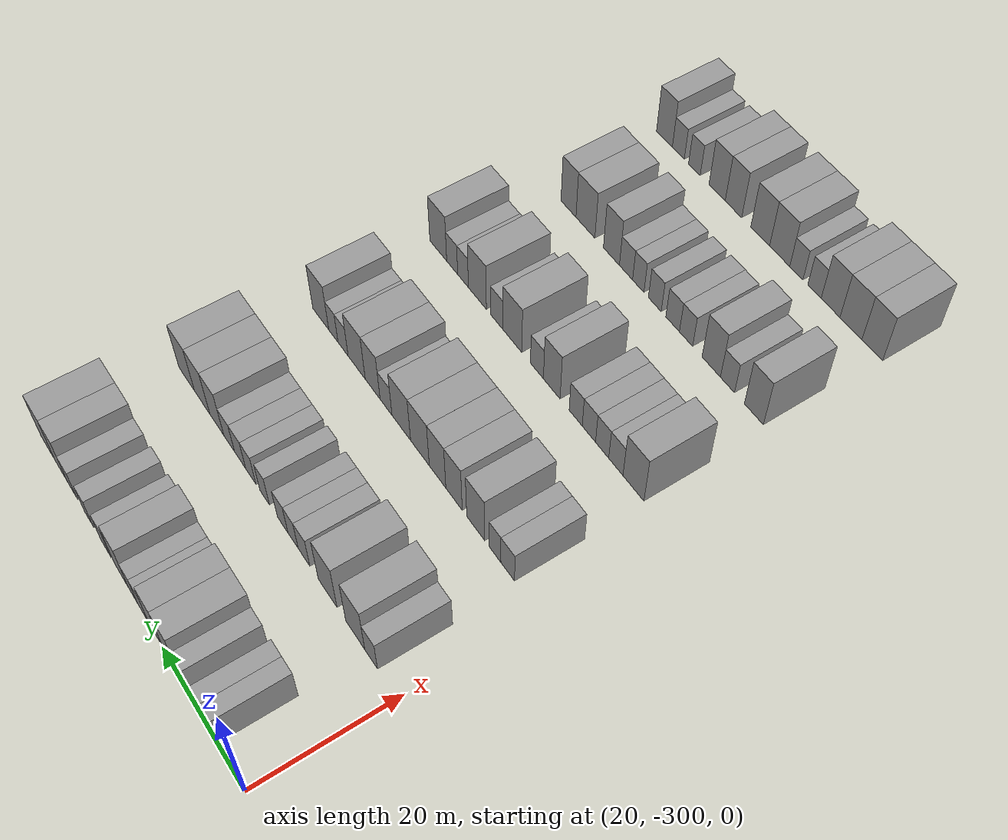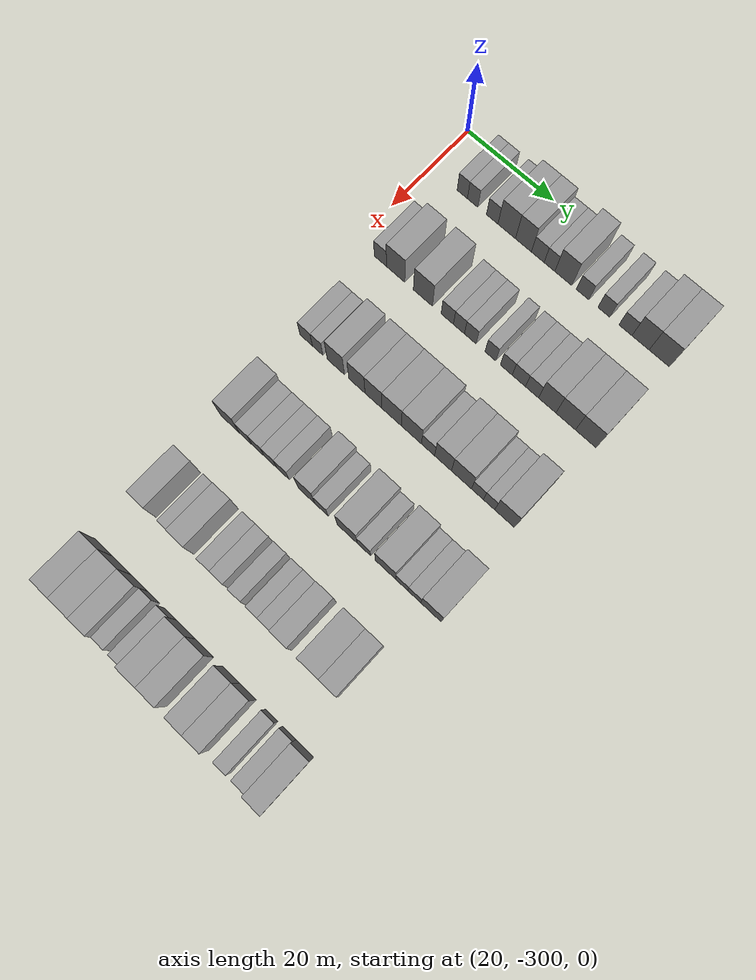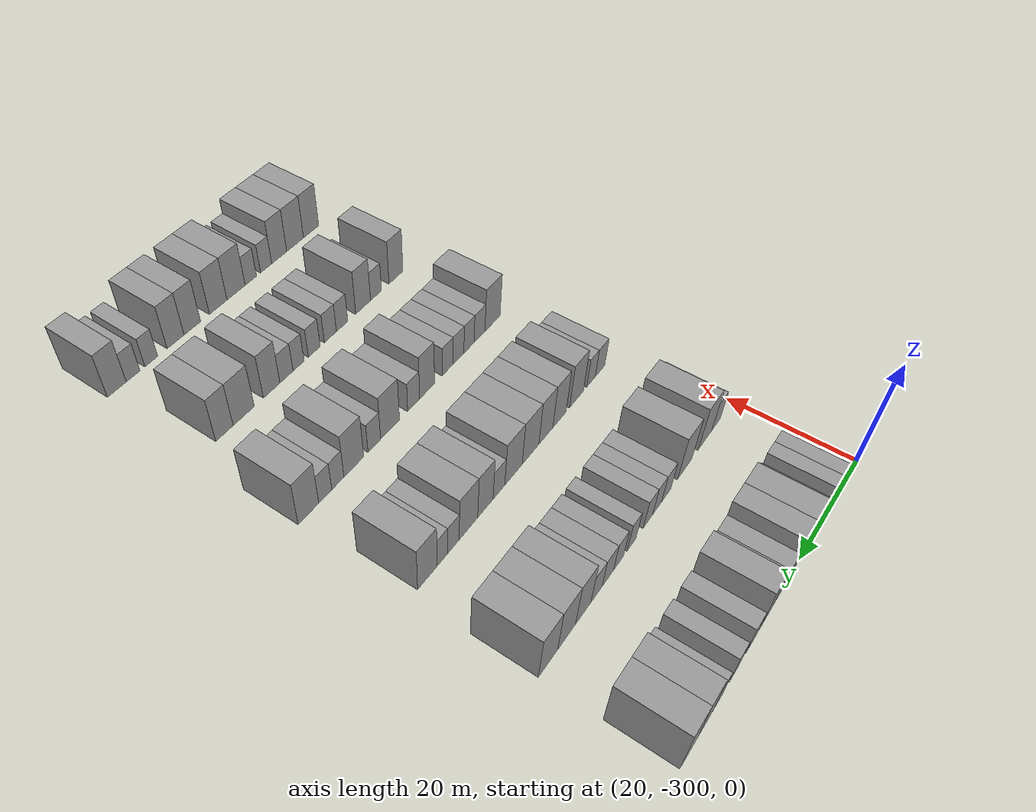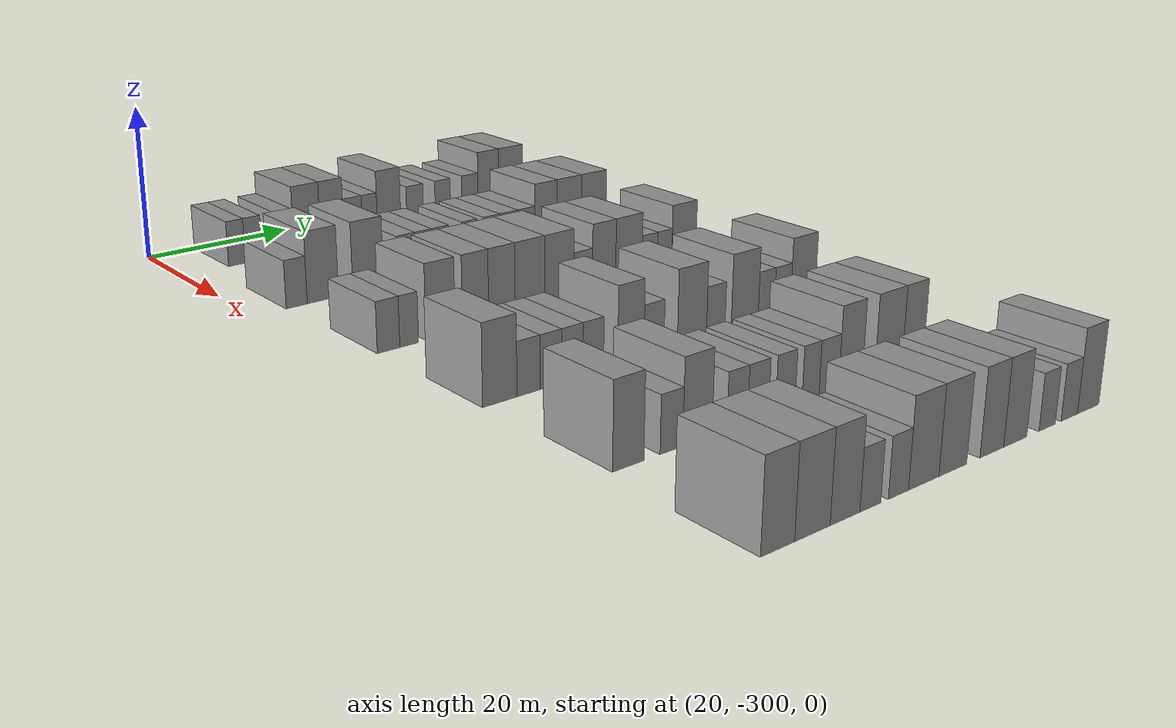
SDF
<sdf version="1.6">
 <world name="default">
  <model name="building_11">
   <static>1</static>
   <pose>25.0000 -292.4646 0 0.000000 0.000000 0.000000</pose>
   <link name="link">
    <pose>0 0 3.00 0 0 0</pose>
    <collision name="collision"><geometry><box><size>10.0000 2.4092 6.0000</size></box></geometry></collision>
    <visual name="visual">
     <cast_shadows>0</cast_shadows>
     <geometry><box><size>10.0000 2.4092 6.0000</size></box></geometry>
     <material>
      <script>
       <uri>model://grey_wall/materials/scripts</uri>
       <uri>model://grey_wall/materials/textures</uri>
       <name>vrc/grey_wall</name>
      </script>
     </material>
    </visual>
   </link>
  </model>
  <model name="building_12">
   <static>1</static>
   <pose>25.0000 -290.0390 0 0.000000 0.000000 0.000000</pose>
   <link name="link">
    <pose>0 0 3.00 0 0 0</pose>
    <collision name="collision"><geometry><box><size>10.0000 2.4420 6.0000</size></box></geometry></collision>
    <visual name="visual">
     <cast_shadows>0</cast_shadows>
     <geometry><box><size>10.0000 2.4420 6.0000</size></box></geometry>
     <material>
      <script>
       <uri>model://grey_wall/materials/scripts</uri>
       <uri>model://grey_wall/materials/textures</uri>
       <name>vrc/grey_wall</name>
      </script>
     </material>
    </visual>
   </link>
  </model>
  <model name="building_13">
   <static>1</static>
   <pose>25.0000 -285.4829 0 0.000000 0.000000 0.000000</pose>
   <link name="link">
    <pose>0 0 3.00 0 0 0</pose>
    <collision name="collision"><geometry><box><size>10.0000 2.6702 6.0000</size></box></geometry></collision>
    <visual name="visual">
     <cast_shadows>0</cast_shadows>
     <geometry><box><size>10.0000 2.6702 6.0000</size></box></geometry>
     <material>
      <script>
       <uri>model://grey_wall/materials/scripts</uri>
       <uri>model://grey_wall/materials/textures</uri>
       <name>vrc/grey_wall</name>
      </script>
     </material>
    </visual>
   </link>
  </model>
  <model name="building_14">
   <static>1</static>
   <pose>25.0000 -282.1232 0 0.000000 0.000000 0.000000</pose>
   <link name="link">
    <pose>0 0 4.50 0 0 0</pose>
    <collision name="collision"><geometry><box><size>10.0000 4.0493 9.0000</size></box></geometry></collision>
    <visual name="visual">
     <cast_shadows>0</cast_shadows>
     <geometry><box><size>10.0000 4.0493 9.0000</size></box></geometry>
     <material>
      <script>
       <uri>model://grey_wall/materials/scripts</uri>
       <uri>model://grey_wall/materials/textures</uri>
       <name>vrc/grey_wall</name>
      </script>
     </material>
    </visual>
   </link>
  </model>
  <model name="building_15">
   <static>1</static>
   <pose>25.0000 -278.2878 0 0.000000 0.000000 0.000000</pose>
   <link name="link">
    <pose>0 0 4.50 0 0 0</pose>
    <collision name="collision"><geometry><box><size>10.0000 3.6216 9.0000</size></box></geometry></collision>
    <visual name="visual">
     <cast_shadows>0</cast_shadows>
     <geometry><box><size>10.0000 3.6216 9.0000</size></box></geometry>
     <material>
      <script>
       <uri>model://grey_wall/materials/scripts</uri>
       <uri>model://grey_wall/materials/textures</uri>
       <name>vrc/grey_wall</name>
      </script>
     </material>
    </visual>
   </link>
  </model>
  <model name="building_16">
   <static>1</static>
   <pose>25.0000 -275.0232 0 0.000000 0.000000 0.000000</pose>
   <link name="link">
    <pose>0 0 3.00 0 0 0</pose>
    <collision name="collision"><geometry><box><size>10.0000 2.9075 6.0000</size></box></geometry></collision>
    <visual name="visual">
     <cast_shadows>0</cast_shadows>
     <geometry><box><size>10.0000 2.9075 6.0000</size></box></geometry>
     <material>
      <script>
       <uri>model://grey_wall/materials/scripts</uri>
       <uri>model://grey_wall/materials/textures</uri>
       <name>vrc/grey_wall</name>
      </script>
     </material>
    </visual>
   </link>
  </model>
  <model name="building_17">
   <static>1</static>
   <pose>25.0000 -272.3607 0 0.000000 0.000000 0.000000</pose>
   <link name="link">
    <pose>0 0 3.00 0 0 0</pose>
    <collision name="collision"><geometry><box><size>10.0000 2.4175 6.0000</size></box></geometry></collision>
    <visual name="visual">
     <cast_shadows>0</cast_shadows>
     <geometry><box><size>10.0000 2.4175 6.0000</size></box></geometry>
     <material>
      <script>
       <uri>model://grey_wall/materials/scripts</uri>
       <uri>model://grey_wall/materials/textures</uri>
       <name>vrc/grey_wall</name>
      </script>
     </material>
    </visual>
   </link>
  </model>
  <model name="building_18">
   <static>1</static>
   <pose>25.0000 -269.2411 0 0.000000 0.000000 0.000000</pose>
   <link name="link">
    <pose>0 0 4.50 0 0 0</pose>
    <collision name="collision"><geometry><box><size>10.0000 3.8217 9.0000</size></box></geometry></collision>
    <visual name="visual">
     <cast_shadows>0</cast_shadows>
     <geometry><box><size>10.0000 3.8217 9.0000</size></box></geometry>
     <material>
      <script>
       <uri>model://grey_wall/materials/scripts</uri>
       <uri>model://grey_wall/materials/textures</uri>
       <name>vrc/grey_wall</name>
      </script>
     </material>
    </visual>
   </link>
  </model>
  <model name="building_19">
   <static>1</static>
   <pose>25.0000 -264.9265 0 0.000000 0.000000 0.000000</pose>
   <link name="link">
    <pose>0 0 3.00 0 0 0</pose>
    <collision name="collision"><geometry><box><size>10.0000 2.8074 6.0000</size></box></geometry></collision>
    <visual name="visual">
     <cast_shadows>0</cast_shadows>
     <geometry><box><size>10.0000 2.8074 6.0000</size></box></geometry>
     <material>
      <script>
       <uri>model://grey_wall/materials/scripts</uri>
       <uri>model://grey_wall/materials/textures</uri>
       <name>vrc/grey_wall</name>
      </script>
     </material>
    </visual>
   </link>
  </model>
  <model name="building_20">
   <static>1</static>
   <pose>25.0000 -260.2096 0 0.000000 0.000000 0.000000</pose>
   <link name="link">
    <pose>0 0 3.00 0 0 0</pose>
    <collision name="collision"><geometry><box><size>10.0000 2.6264 6.0000</size></box></geometry></collision>
    <visual name="visual">
     <cast_shadows>0</cast_shadows>
     <geometry><box><size>10.0000 2.6264 6.0000</size></box></geometry>
     <material>
      <script>
       <uri>model://grey_wall/materials/scripts</uri>
       <uri>model://grey_wall/materials/textures</uri>
       <name>vrc/grey_wall</name>
      </script>
     </material>
    </visual>
   </link>
  </model>
  <model name="building_21">
   <static>1</static>
   <pose>25.0000 -255.4781 0 0.000000 0.000000 0.000000</pose>
   <link name="link">
    <pose>0 0 3.00 0 0 0</pose>
    <collision name="collision"><geometry><box><size>10.0000 2.8368 6.0000</size></box></geometry></collision>
    <visual name="visual">
     <cast_shadows>0</cast_shadows>
     <geometry><box><size>10.0000 2.8368 6.0000</size></box></geometry>
     <material>
      <script>
       <uri>model://grey_wall/materials/scripts</uri>
       <uri>model://grey_wall/materials/textures</uri>
       <name>vrc/grey_wall</name>
      </script>
     </material>
    </visual>
   </link>
  </model>
  <model name="building_22">
   <static>1</static>
   <pose>25.0000 -252.1929 0 0.000000 0.000000 0.000000</pose>
   <link name="link">
    <pose>0 0 4.50 0 0 0</pose>
    <collision name="collision"><geometry><box><size>10.0000 3.7335 9.0000</size></box></geometry></collision>
    <visual name="visual">
     <cast_shadows>0</cast_shadows>
     <geometry><box><size>10.0000 3.7335 9.0000</size></box></geometry>
     <material>
      <script>
       <uri>model://grey_wall/materials/scripts</uri>
       <uri>model://grey_wall/materials/textures</uri>
       <name>vrc/grey_wall</name>
      </script>
     </material>
    </visual>
   </link>
  </model>
  <model name="building_23">
   <static>1</static>
   <pose>25.0000 -248.1454 0 0.000000 0.000000 0.000000</pose>
   <link name="link">
    <pose>0 0 4.50 0 0 0</pose>
    <collision name="collision"><geometry><box><size>10.0000 4.3615 9.0000</size></box></geometry></collision>
    <visual name="visual">
     <cast_shadows>0</cast_shadows>
     <geometry><box><size>10.0000 4.3615 9.0000</size></box></geometry>
     <material>
      <script>
       <uri>model://grey_wall/materials/scripts</uri>
       <uri>model://grey_wall/materials/textures</uri>
       <name>vrc/grey_wall</name>
      </script>
     </material>
    </visual>
   </link>
  </model>
  <model name="building_182">
   <static>1</static>
   <pose>44.0000 -294.3470 0 0.000000 0.000000 0.000000</pose>
   <link name="link">
    <pose>0 0 3.00 0 0 0</pose>
    <collision name="collision"><geometry><box><size>10.0000 2.8374 6.0000</size></box></geometry></collision>
    <visual name="visual">
     <cast_shadows>0</cast_shadows>
     <geometry><box><size>10.0000 2.8374 6.0000</size></box></geometry>
     <material>
      <script>
       <uri>model://grey_wall/materials/scripts</uri>
       <uri>model://grey_wall/materials/textures</uri>
       <name>vrc/grey_wall</name>
      </script>
     </material>
    </visual>
   </link>
  </model>
  <model name="building_183">
   <static>1</static>
   <pose>44.0000 -290.7730 0 0.000000 0.000000 0.000000</pose>
   <link name="link">
    <pose>0 0 4.50 0 0 0</pose>
    <collision name="collision"><geometry><box><size>10.0000 4.3106 9.0000</size></box></geometry></collision>
    <visual name="visual">
     <cast_shadows>0</cast_shadows>
     <geometry><box><size>10.0000 4.3106 9.0000</size></box></geometry>
     <material>
      <script>
       <uri>model://grey_wall/materials/scripts</uri>
       <uri>model://grey_wall/materials/textures</uri>
       <name>vrc/grey_wall</name>
      </script>
     </material>
    </visual>
   </link>
  </model>
  <model name="building_184">
   <static>1</static>
   <pose>44.0000 -284.4178 0 0.000000 0.000000 0.000000</pose>
   <link name="link">
    <pose>0 0 4.50 0 0 0</pose>
    <collision name="collision"><geometry><box><size>10.0000 4.3997 9.0000</size></box></geometry></collision>
    <visual name="visual">
     <cast_shadows>0</cast_shadows>
     <geometry><box><size>10.0000 4.3997 9.0000</size></box></geometry>
     <material>
      <script>
       <uri>model://grey_wall/materials/scripts</uri>
       <uri>model://grey_wall/materials/textures</uri>
       <name>vrc/grey_wall</name>
      </script>
     </material>
    </visual>
   </link>
  </model>
  <model name="building_185">
   <static>1</static>
   <pose>44.0000 -278.8177 0 0.000000 0.000000 0.000000</pose>
   <link name="link">
    <pose>0 0 3.00 0 0 0</pose>
    <collision name="collision"><geometry><box><size>10.0000 2.8006 6.0000</size></box></geometry></collision>
    <visual name="visual">
     <cast_shadows>0</cast_shadows>
     <geometry><box><size>10.0000 2.8006 6.0000</size></box></geometry>
     <material>
      <script>
       <uri>model://grey_wall/materials/scripts</uri>
       <uri>model://grey_wall/materials/textures</uri>
       <name>vrc/grey_wall</name>
      </script>
     </material>
    </visual>
   </link>
  </model>
  <model name="building_186">
   <static>1</static>
   <pose>44.0000 -276.1673 0 0.000000 0.000000 0.000000</pose>
   <link name="link">
    <pose>0 0 3.00 0 0 0</pose>
    <collision name="collision"><geometry><box><size>10.0000 2.5003 6.0000</size></box></geometry></collision>
    <visual name="visual">
     <cast_shadows>0</cast_shadows>
     <geometry><box><size>10.0000 2.5003 6.0000</size></box></geometry>
     <material>
      <script>
       <uri>model://grey_wall/materials/scripts</uri>
       <uri>model://grey_wall/materials/textures</uri>
       <name>vrc/grey_wall</name>
      </script>
     </material>
    </visual>
   </link>
  </model>
  <model name="building_187">
   <static>1</static>
   <pose>44.0000 -273.6014 0 0.000000 0.000000 0.000000</pose>
   <link name="link">
    <pose>0 0 3.00 0 0 0</pose>
    <collision name="collision"><geometry><box><size>10.0000 2.6316 6.0000</size></box></geometry></collision>
    <visual name="visual">
     <cast_shadows>0</cast_shadows>
     <geometry><box><size>10.0000 2.6316 6.0000</size></box></geometry>
     <material>
      <script>
       <uri>model://grey_wall/materials/scripts</uri>
       <uri>model://grey_wall/materials/textures</uri>
       <name>vrc/grey_wall</name>
      </script>
     </material>
    </visual>
   </link>
  </model>
  <model name="building_188">
   <static>1</static>
   <pose>44.0000 -269.0796 0 0.000000 0.000000 0.000000</pose>
   <link name="link">
    <pose>0 0 3.00 0 0 0</pose>
    <collision name="collision"><geometry><box><size>10.0000 2.4119 6.0000</size></box></geometry></collision>
    <visual name="visual">
     <cast_shadows>0</cast_shadows>
     <geometry><box><size>10.0000 2.4119 6.0000</size></box></geometry>
     <material>
      <script>
       <uri>model://grey_wall/materials/scripts</uri>
       <uri>model://grey_wall/materials/textures</uri>
       <name>vrc/grey_wall</name>
      </script>
     </material>
    </visual>
   </link>
  </model>
  <model name="building_189">
   <static>1</static>
   <pose>44.0000 -265.5521 0 0.000000 0.000000 0.000000</pose>
   <link name="link">
    <pose>0 0 3.00 0 0 0</pose>
    <collision name="collision"><geometry><box><size>10.0000 2.6431 6.0000</size></box></geometry></collision>
    <visual name="visual">
     <cast_shadows>0</cast_shadows>
     <geometry><box><size>10.0000 2.6431 6.0000</size></box></geometry>
     <material>
      <script>
       <uri>model://grey_wall/materials/scripts</uri>
       <uri>model://grey_wall/materials/textures</uri>
       <name>vrc/grey_wall</name>
      </script>
     </material>
    </visual>
   </link>
  </model>
  <model name="building_190">
   <static>1</static>
   <pose>44.0000 -262.7664 0 0.000000 0.000000 0.000000</pose>
   <link name="link">
    <pose>0 0 3.00 0 0 0</pose>
    <collision name="collision"><geometry><box><size>10.0000 2.9283 6.0000</size></box></geometry></collision>
    <visual name="visual">
     <cast_shadows>0</cast_shadows>
     <geometry><box><size>10.0000 2.9283 6.0000</size></box></geometry>
     <material>
      <script>
       <uri>model://grey_wall/materials/scripts</uri>
       <uri>model://grey_wall/materials/textures</uri>
       <name>vrc/grey_wall</name>
      </script>
     </material>
    </visual>
   </link>
  </model>
  <model name="building_191">
   <static>1</static>
   <pose>44.0000 -259.8717 0 0.000000 0.000000 0.000000</pose>
   <link name="link">
    <pose>0 0 3.00 0 0 0</pose>
    <collision name="collision"><geometry><box><size>10.0000 2.8611 6.0000</size></box></geometry></collision>
    <visual name="visual">
     <cast_shadows>0</cast_shadows>
     <geometry><box><size>10.0000 2.8611 6.0000</size></box></geometry>
     <material>
      <script>
       <uri>model://grey_wall/materials/scripts</uri>
       <uri>model://grey_wall/materials/textures</uri>
       <name>vrc/grey_wall</name>
      </script>
     </material>
    </visual>
   </link>
  </model>
  <model name="building_192">
   <static>1</static>
   <pose>44.0000 -256.5457 0 0.000000 0.000000 0.000000</pose>
   <link name="link">
    <pose>0 0 4.50 0 0 0</pose>
    <collision name="collision"><geometry><box><size>10.0000 3.7911 9.0000</size></box></geometry></collision>
    <visual name="visual">
     <cast_shadows>0</cast_shadows>
     <geometry><box><size>10.0000 3.7911 9.0000</size></box></geometry>
     <material>
      <script>
       <uri>model://grey_wall/materials/scripts</uri>
       <uri>model://grey_wall/materials/textures</uri>
       <name>vrc/grey_wall</name>
      </script>
     </material>
    </visual>
   </link>
  </model>
  <model name="building_193">
   <static>1</static>
   <pose>44.0000 -252.5332 0 0.000000 0.000000 0.000000</pose>
   <link name="link">
    <pose>0 0 4.50 0 0 0</pose>
    <collision name="collision"><geometry><box><size>10.0000 4.2337 9.0000</size></box></geometry></collision>
    <visual name="visual">
     <cast_shadows>0</cast_shadows>
     <geometry><box><size>10.0000 4.2337 9.0000</size></box></geometry>
     <material>
      <script>
       <uri>model://grey_wall/materials/scripts</uri>
       <uri>model://grey_wall/materials/textures</uri>
       <name>vrc/grey_wall</name>
      </script>
     </material>
    </visual>
   </link>
  </model>
  <model name="building_194">
   <static>1</static>
   <pose>44.0000 -248.2084 0 0.000000 0.000000 0.000000</pose>
   <link name="link">
    <pose>0 0 4.50 0 0 0</pose>
    <collision name="collision"><geometry><box><size>10.0000 4.4159 9.0000</size></box></geometry></collision>
    <visual name="visual">
     <cast_shadows>0</cast_shadows>
     <geometry><box><size>10.0000 4.4159 9.0000</size></box></geometry>
     <material>
      <script>
       <uri>model://grey_wall/materials/scripts</uri>
       <uri>model://grey_wall/materials/textures</uri>
       <name>vrc/grey_wall</name>
      </script>
     </material>
    </visual>
   </link>
  </model>
  <model name="building_362">
   <static>1</static>
   <pose>63.0000 -293.6010 0 0.000000 0.000000 0.000000</pose>
   <link name="link">
    <pose>0 0 3.00 0 0 0</pose>
    <collision name="collision"><geometry><box><size>10.0000 2.9008 6.0000</size></box></geometry></collision>
    <visual name="visual">
     <cast_shadows>0</cast_shadows>
     <geometry><box><size>10.0000 2.9008 6.0000</size></box></geometry>
     <material>
      <script>
       <uri>model://grey_wall/materials/scripts</uri>
       <uri>model://grey_wall/materials/textures</uri>
       <name>vrc/grey_wall</name>
      </script>
     </material>
    </visual>
   </link>
  </model>
  <model name="building_363">
   <static>1</static>
   <pose>63.0000 -290.9128 0 0.000000 0.000000 0.000000</pose>
   <link name="link">
    <pose>0 0 3.00 0 0 0</pose>
    <collision name="collision"><geometry><box><size>10.0000 2.4757 6.0000</size></box></geometry></collision>
    <visual name="visual">
     <cast_shadows>0</cast_shadows>
     <geometry><box><size>10.0000 2.4757 6.0000</size></box></geometry>
     <material>
      <script>
       <uri>model://grey_wall/materials/scripts</uri>
       <uri>model://grey_wall/materials/textures</uri>
       <name>vrc/grey_wall</name>
      </script>
     </material>
    </visual>
   </link>
  </model>
  <model name="building_364">
   <static>1</static>
   <pose>63.0000 -286.6892 0 0.000000 0.000000 0.000000</pose>
   <link name="link">
    <pose>0 0 4.50 0 0 0</pose>
    <collision name="collision"><geometry><box><size>10.0000 3.9715 9.0000</size></box></geometry></collision>
    <visual name="visual">
     <cast_shadows>0</cast_shadows>
     <geometry><box><size>10.0000 3.9715 9.0000</size></box></geometry>
     <material>
      <script>
       <uri>model://grey_wall/materials/scripts</uri>
       <uri>model://grey_wall/materials/textures</uri>
       <name>vrc/grey_wall</name>
      </script>
     </material>
    </visual>
   </link>
  </model>
  <model name="building_365">
   <static>1</static>
   <pose>63.0000 -281.8565 0 0.000000 0.000000 0.000000</pose>
   <link name="link">
    <pose>0 0 4.50 0 0 0</pose>
    <collision name="collision"><geometry><box><size>10.0000 3.6940 9.0000</size></box></geometry></collision>
    <visual name="visual">
     <cast_shadows>0</cast_shadows>
     <geometry><box><size>10.0000 3.6940 9.0000</size></box></geometry>
     <material>
      <script>
       <uri>model://grey_wall/materials/scripts</uri>
       <uri>model://grey_wall/materials/textures</uri>
       <name>vrc/grey_wall</name>
      </script>
     </material>
    </visual>
   </link>
  </model>
  <model name="building_366">
   <static>1</static>
   <pose>63.0000 -278.1014 0 0.000000 0.000000 0.000000</pose>
   <link name="link">
    <pose>0 0 4.50 0 0 0</pose>
    <collision name="collision"><geometry><box><size>10.0000 3.8161 9.0000</size></box></geometry></collision>
    <visual name="visual">
     <cast_shadows>0</cast_shadows>
     <geometry><box><size>10.0000 3.8161 9.0000</size></box></geometry>
     <material>
      <script>
       <uri>model://grey_wall/materials/scripts</uri>
       <uri>model://grey_wall/materials/textures</uri>
       <name>vrc/grey_wall</name>
      </script>
     </material>
    </visual>
   </link>
  </model>
  <model name="building_367">
   <static>1</static>
   <pose>63.0000 -273.9947 0 0.000000 0.000000 0.000000</pose>
   <link name="link">
    <pose>0 0 4.50 0 0 0</pose>
    <collision name="collision"><geometry><box><size>10.0000 4.3972 9.0000</size></box></geometry></collision>
    <visual name="visual">
     <cast_shadows>0</cast_shadows>
     <geometry><box><size>10.0000 4.3972 9.0000</size></box></geometry>
     <material>
      <script>
       <uri>model://grey_wall/materials/scripts</uri>
       <uri>model://grey_wall/materials/textures</uri>
       <name>vrc/grey_wall</name>
      </script>
     </material>
    </visual>
   </link>
  </model>
  <model name="building_368">
   <static>1</static>
   <pose>63.0000 -269.5645 0 0.000000 0.000000 0.000000</pose>
   <link name="link">
    <pose>0 0 4.50 0 0 0</pose>
    <collision name="collision"><geometry><box><size>10.0000 4.4633 9.0000</size></box></geometry></collision>
    <visual name="visual">
     <cast_shadows>0</cast_shadows>
     <geometry><box><size>10.0000 4.4633 9.0000</size></box></geometry>
     <material>
      <script>
       <uri>model://grey_wall/materials/scripts</uri>
       <uri>model://grey_wall/materials/textures</uri>
       <name>vrc/grey_wall</name>
      </script>
     </material>
    </visual>
   </link>
  </model>
  <model name="building_369">
   <static>1</static>
   <pose>63.0000 -265.8776 0 0.000000 0.000000 0.000000</pose>
   <link name="link">
    <pose>0 0 3.00 0 0 0</pose>
    <collision name="collision"><geometry><box><size>10.0000 2.9104 6.0000</size></box></geometry></collision>
    <visual name="visual">
     <cast_shadows>0</cast_shadows>
     <geometry><box><size>10.0000 2.9104 6.0000</size></box></geometry>
     <material>
      <script>
       <uri>model://grey_wall/materials/scripts</uri>
       <uri>model://grey_wall/materials/textures</uri>
       <name>vrc/grey_wall</name>
      </script>
     </material>
    </visual>
   </link>
  </model>
  <model name="building_370">
   <static>1</static>
   <pose>63.0000 -262.5702 0 0.000000 0.000000 0.000000</pose>
   <link name="link">
    <pose>0 0 4.50 0 0 0</pose>
    <collision name="collision"><geometry><box><size>10.0000 3.7043 9.0000</size></box></geometry></collision>
    <visual name="visual">
     <cast_shadows>0</cast_shadows>
     <geometry><box><size>10.0000 3.7043 9.0000</size></box></geometry>
     <material>
      <script>
       <uri>model://grey_wall/materials/scripts</uri>
       <uri>model://grey_wall/materials/textures</uri>
       <name>vrc/grey_wall</name>
      </script>
     </material>
    </visual>
   </link>
  </model>
  <model name="building_371">
   <static>1</static>
   <pose>63.0000 -258.5419 0 0.000000 0.000000 0.000000</pose>
   <link name="link">
    <pose>0 0 4.50 0 0 0</pose>
    <collision name="collision"><geometry><box><size>10.0000 4.3522 9.0000</size></box></geometry></collision>
    <visual name="visual">
     <cast_shadows>0</cast_shadows>
     <geometry><box><size>10.0000 4.3522 9.0000</size></box></geometry>
     <material>
      <script>
       <uri>model://grey_wall/materials/scripts</uri>
       <uri>model://grey_wall/materials/textures</uri>
       <name>vrc/grey_wall</name>
      </script>
     </material>
    </visual>
   </link>
  </model>
  <model name="building_372">
   <static>1</static>
   <pose>63.0000 -255.0656 0 0.000000 0.000000 0.000000</pose>
   <link name="link">
    <pose>0 0 3.00 0 0 0</pose>
    <collision name="collision"><geometry><box><size>10.0000 2.6005 6.0000</size></box></geometry></collision>
    <visual name="visual">
     <cast_shadows>0</cast_shadows>
     <geometry><box><size>10.0000 2.6005 6.0000</size></box></geometry>
     <material>
      <script>
       <uri>model://grey_wall/materials/scripts</uri>
       <uri>model://grey_wall/materials/textures</uri>
       <name>vrc/grey_wall</name>
      </script>
     </material>
    </visual>
   </link>
  </model>
  <model name="building_373">
   <static>1</static>
   <pose>63.0000 -252.5535 0 0.000000 0.000000 0.000000</pose>
   <link name="link">
    <pose>0 0 3.00 0 0 0</pose>
    <collision name="collision"><geometry><box><size>10.0000 2.4236 6.0000</size></box></geometry></collision>
    <visual name="visual">
     <cast_shadows>0</cast_shadows>
     <geometry><box><size>10.0000 2.4236 6.0000</size></box></geometry>
     <material>
      <script>
       <uri>model://grey_wall/materials/scripts</uri>
       <uri>model://grey_wall/materials/textures</uri>
       <name>vrc/grey_wall</name>
      </script>
     </material>
    </visual>
   </link>
  </model>
  <model name="building_374">
   <static>1</static>
   <pose>63.0000 -249.2365 0 0.000000 0.000000 0.000000</pose>
   <link name="link">
    <pose>0 0 4.50 0 0 0</pose>
    <collision name="collision"><geometry><box><size>10.0000 4.2103 9.0000</size></box></geometry></collision>
    <visual name="visual">
     <cast_shadows>0</cast_shadows>
     <geometry><box><size>10.0000 4.2103 9.0000</size></box></geometry>
     <material>
      <script>
       <uri>model://grey_wall/materials/scripts</uri>
       <uri>model://grey_wall/materials/textures</uri>
       <name>vrc/grey_wall</name>
      </script>
     </material>
    </visual>
   </link>
  </model>
  <model name="building_528">
   <static>1</static>
   <pose>82.0000 -292.5522 0 0.000000 0.000000 0.000000</pose>
   <link name="link">
    <pose>0 0 4.50 0 0 0</pose>
    <collision name="collision"><geometry><box><size>10.0000 4.3041 9.0000</size></box></geometry></collision>
    <visual name="visual">
     <cast_shadows>0</cast_shadows>
     <geometry><box><size>10.0000 4.3041 9.0000</size></box></geometry>
     <material>
      <script>
       <uri>model://grey_wall/materials/scripts</uri>
       <uri>model://grey_wall/materials/textures</uri>
       <name>vrc/grey_wall</name>
      </script>
     </material>
    </visual>
   </link>
  </model>
  <model name="building_529">
   <static>1</static>
   <pose>82.0000 -288.9078 0 0.000000 0.000000 0.000000</pose>
   <link name="link">
    <pose>0 0 3.00 0 0 0</pose>
    <collision name="collision"><geometry><box><size>10.0000 2.9847 6.0000</size></box></geometry></collision>
    <visual name="visual">
     <cast_shadows>0</cast_shadows>
     <geometry><box><size>10.0000 2.9847 6.0000</size></box></geometry>
     <material>
      <script>
       <uri>model://grey_wall/materials/scripts</uri>
       <uri>model://grey_wall/materials/textures</uri>
       <name>vrc/grey_wall</name>
      </script>
     </material>
    </visual>
   </link>
  </model>
  <model name="building_530">
   <static>1</static>
   <pose>82.0000 -286.0202 0 0.000000 0.000000 0.000000</pose>
   <link name="link">
    <pose>0 0 3.00 0 0 0</pose>
    <collision name="collision"><geometry><box><size>10.0000 2.7906 6.0000</size></box></geometry></collision>
    <visual name="visual">
     <cast_shadows>0</cast_shadows>
     <geometry><box><size>10.0000 2.7906 6.0000</size></box></geometry>
     <material>
      <script>
       <uri>model://grey_wall/materials/scripts</uri>
       <uri>model://grey_wall/materials/textures</uri>
       <name>vrc/grey_wall</name>
      </script>
     </material>
    </visual>
   </link>
  </model>
  <model name="building_531">
   <static>1</static>
   <pose>82.0000 -283.1897 0 0.000000 0.000000 0.000000</pose>
   <link name="link">
    <pose>0 0 3.00 0 0 0</pose>
    <collision name="collision"><geometry><box><size>10.0000 2.8705 6.0000</size></box></geometry></collision>
    <visual name="visual">
     <cast_shadows>0</cast_shadows>
     <geometry><box><size>10.0000 2.8705 6.0000</size></box></geometry>
     <material>
      <script>
       <uri>model://grey_wall/materials/scripts</uri>
       <uri>model://grey_wall/materials/textures</uri>
       <name>vrc/grey_wall</name>
      </script>
     </material>
    </visual>
   </link>
  </model>
  <model name="building_532">
   <static>1</static>
   <pose>82.0000 -280.3255 0 0.000000 0.000000 0.000000</pose>
   <link name="link">
    <pose>0 0 3.00 0 0 0</pose>
    <collision name="collision"><geometry><box><size>10.0000 2.8579 6.0000</size></box></geometry></collision>
    <visual name="visual">
     <cast_shadows>0</cast_shadows>
     <geometry><box><size>10.0000 2.8579 6.0000</size></box></geometry>
     <material>
      <script>
       <uri>model://grey_wall/materials/scripts</uri>
       <uri>model://grey_wall/materials/textures</uri>
       <name>vrc/grey_wall</name>
      </script>
     </material>
    </visual>
   </link>
  </model>
  <model name="building_533">
   <static>1</static>
   <pose>82.0000 -275.0267 0 0.000000 0.000000 0.000000</pose>
   <link name="link">
    <pose>0 0 4.50 0 0 0</pose>
    <collision name="collision"><geometry><box><size>10.0000 3.7397 9.0000</size></box></geometry></collision>
    <visual name="visual">
     <cast_shadows>0</cast_shadows>
     <geometry><box><size>10.0000 3.7397 9.0000</size></box></geometry>
     <material>
      <script>
       <uri>model://grey_wall/materials/scripts</uri>
       <uri>model://grey_wall/materials/textures</uri>
       <name>vrc/grey_wall</name>
      </script>
     </material>
    </visual>
   </link>
  </model>
  <model name="building_534">
   <static>1</static>
   <pose>82.0000 -271.6827 0 0.000000 0.000000 0.000000</pose>
   <link name="link">
    <pose>0 0 3.00 0 0 0</pose>
    <collision name="collision"><geometry><box><size>10.0000 2.9483 6.0000</size></box></geometry></collision>
    <visual name="visual">
     <cast_shadows>0</cast_shadows>
     <geometry><box><size>10.0000 2.9483 6.0000</size></box></geometry>
     <material>
      <script>
       <uri>model://grey_wall/materials/scripts</uri>
       <uri>model://grey_wall/materials/textures</uri>
       <name>vrc/grey_wall</name>
      </script>
     </material>
    </visual>
   </link>
  </model>
  <model name="building_535">
   <static>1</static>
   <pose>82.0000 -265.9795 0 0.000000 0.000000 0.000000</pose>
   <link name="link">
    <pose>0 0 4.50 0 0 0</pose>
    <collision name="collision"><geometry><box><size>10.0000 4.4581 9.0000</size></box></geometry></collision>
    <visual name="visual">
     <cast_shadows>0</cast_shadows>
     <geometry><box><size>10.0000 4.4581 9.0000</size></box></geometry>
     <material>
      <script>
       <uri>model://grey_wall/materials/scripts</uri>
       <uri>model://grey_wall/materials/textures</uri>
       <name>vrc/grey_wall</name>
      </script>
     </material>
    </visual>
   </link>
  </model>
  <model name="building_536">
   <static>1</static>
   <pose>82.0000 -262.2933 0 0.000000 0.000000 0.000000</pose>
   <link name="link">
    <pose>0 0 3.00 0 0 0</pose>
    <collision name="collision"><geometry><box><size>10.0000 2.9142 6.0000</size></box></geometry></collision>
    <visual name="visual">
     <cast_shadows>0</cast_shadows>
     <geometry><box><size>10.0000 2.9142 6.0000</size></box></geometry>
     <material>
      <script>
       <uri>model://grey_wall/materials/scripts</uri>
       <uri>model://grey_wall/materials/textures</uri>
       <name>vrc/grey_wall</name>
      </script>
     </material>
    </visual>
   </link>
  </model>
  <model name="building_537">
   <static>1</static>
   <pose>82.0000 -257.6393 0 0.000000 0.000000 0.000000</pose>
   <link name="link">
    <pose>0 0 4.50 0 0 0</pose>
    <collision name="collision"><geometry><box><size>10.0000 4.3939 9.0000</size></box></geometry></collision>
    <visual name="visual">
     <cast_shadows>0</cast_shadows>
     <geometry><box><size>10.0000 4.3939 9.0000</size></box></geometry>
     <material>
      <script>
       <uri>model://grey_wall/materials/scripts</uri>
       <uri>model://grey_wall/materials/textures</uri>
       <name>vrc/grey_wall</name>
      </script>
     </material>
    </visual>
   </link>
  </model>
  <model name="building_538">
   <static>1</static>
   <pose>82.0000 -254.1129 0 0.000000 0.000000 0.000000</pose>
   <link name="link">
    <pose>0 0 3.00 0 0 0</pose>
    <collision name="collision"><geometry><box><size>10.0000 2.6590 6.0000</size></box></geometry></collision>
    <visual name="visual">
     <cast_shadows>0</cast_shadows>
     <geometry><box><size>10.0000 2.6590 6.0000</size></box></geometry>
     <material>
      <script>
       <uri>model://grey_wall/materials/scripts</uri>
       <uri>model://grey_wall/materials/textures</uri>
       <name>vrc/grey_wall</name>
      </script>
     </material>
    </visual>
   </link>
  </model>
  <model name="building_539">
   <static>1</static>
   <pose>82.0000 -251.4051 0 0.000000 0.000000 0.000000</pose>
   <link name="link">
    <pose>0 0 3.00 0 0 0</pose>
    <collision name="collision"><geometry><box><size>10.0000 2.7565 6.0000</size></box></geometry></collision>
    <visual name="visual">
     <cast_shadows>0</cast_shadows>
     <geometry><box><size>10.0000 2.7565 6.0000</size></box></geometry>
     <material>
      <script>
       <uri>model://grey_wall/materials/scripts</uri>
       <uri>model://grey_wall/materials/textures</uri>
       <name>vrc/grey_wall</name>
      </script>
     </material>
    </visual>
   </link>
  </model>
  <model name="building_540">
   <static>1</static>
   <pose>82.0000 -247.8852 0 0.000000 0.000000 0.000000</pose>
   <link name="link">
    <pose>0 0 4.50 0 0 0</pose>
    <collision name="collision"><geometry><box><size>10.0000 4.2834 9.0000</size></box></geometry></collision>
    <visual name="visual">
     <cast_shadows>0</cast_shadows>
     <geometry><box><size>10.0000 4.2834 9.0000</size></box></geometry>
     <material>
      <script>
       <uri>model://grey_wall/materials/scripts</uri>
       <uri>model://grey_wall/materials/textures</uri>
       <name>vrc/grey_wall</name>
      </script>
     </material>
    </visual>
   </link>
  </model>
  <model name="building_703">
   <static>1</static>
   <pose>101.0000 -292.1672 0 0.000000 0.000000 0.000000</pose>
   <link name="link">
    <pose>0 0 4.50 0 0 0</pose>
    <collision name="collision"><geometry><box><size>10.0000 3.7935 9.0000</size></box></geometry></collision>
    <visual name="visual">
     <cast_shadows>0</cast_shadows>
     <geometry><box><size>10.0000 3.7935 9.0000</size></box></geometry>
     <material>
      <script>
       <uri>model://grey_wall/materials/scripts</uri>
       <uri>model://grey_wall/materials/textures</uri>
       <name>vrc/grey_wall</name>
      </script>
     </material>
    </visual>
   </link>
  </model>
  <model name="building_704">
   <static>1</static>
   <pose>101.0000 -286.8284 0 0.000000 0.000000 0.000000</pose>
   <link name="link">
    <pose>0 0 3.00 0 0 0</pose>
    <collision name="collision"><geometry><box><size>10.0000 2.8841 6.0000</size></box></geometry></collision>
    <visual name="visual">
     <cast_shadows>0</cast_shadows>
     <geometry><box><size>10.0000 2.8841 6.0000</size></box></geometry>
     <material>
      <script>
       <uri>model://grey_wall/materials/scripts</uri>
       <uri>model://grey_wall/materials/textures</uri>
       <name>vrc/grey_wall</name>
      </script>
     </material>
    </visual>
   </link>
  </model>
  <model name="building_705">
   <static>1</static>
   <pose>101.0000 -283.4772 0 0.000000 0.000000 0.000000</pose>
   <link name="link">
    <pose>0 0 4.50 0 0 0</pose>
    <collision name="collision"><geometry><box><size>10.0000 3.8182 9.0000</size></box></geometry></collision>
    <visual name="visual">
     <cast_shadows>0</cast_shadows>
     <geometry><box><size>10.0000 3.8182 9.0000</size></box></geometry>
     <material>
      <script>
       <uri>model://grey_wall/materials/scripts</uri>
       <uri>model://grey_wall/materials/textures</uri>
       <name>vrc/grey_wall</name>
      </script>
     </material>
    </visual>
   </link>
  </model>
  <model name="building_706">
   <static>1</static>
   <pose>101.0000 -278.1553 0 0.000000 0.000000 0.000000</pose>
   <link name="link">
    <pose>0 0 3.00 0 0 0</pose>
    <collision name="collision"><geometry><box><size>10.0000 2.8255 6.0000</size></box></geometry></collision>
    <visual name="visual">
     <cast_shadows>0</cast_shadows>
     <geometry><box><size>10.0000 2.8255 6.0000</size></box></geometry>
     <material>
      <script>
       <uri>model://grey_wall/materials/scripts</uri>
       <uri>model://grey_wall/materials/textures</uri>
       <name>vrc/grey_wall</name>
      </script>
     </material>
    </visual>
   </link>
  </model>
  <model name="building_707">
   <static>1</static>
   <pose>101.0000 -275.2720 0 0.000000 0.000000 0.000000</pose>
   <link name="link">
    <pose>0 0 3.00 0 0 0</pose>
    <collision name="collision"><geometry><box><size>10.0000 2.9411 6.0000</size></box></geometry></collision>
    <visual name="visual">
     <cast_shadows>0</cast_shadows>
     <geometry><box><size>10.0000 2.9411 6.0000</size></box></geometry>
     <material>
      <script>
       <uri>model://grey_wall/materials/scripts</uri>
       <uri>model://grey_wall/materials/textures</uri>
       <name>vrc/grey_wall</name>
      </script>
     </material>
    </visual>
   </link>
  </model>
  <model name="building_708">
   <static>1</static>
   <pose>101.0000 -271.3883 0 0.000000 0.000000 0.000000</pose>
   <link name="link">
    <pose>0 0 3.00 0 0 0</pose>
    <collision name="collision"><geometry><box><size>10.0000 2.8262 6.0000</size></box></geometry></collision>
    <visual name="visual">
     <cast_shadows>0</cast_shadows>
     <geometry><box><size>10.0000 2.8262 6.0000</size></box></geometry>
     <material>
      <script>
       <uri>model://grey_wall/materials/scripts</uri>
       <uri>model://grey_wall/materials/textures</uri>
       <name>vrc/grey_wall</name>
      </script>
     </material>
    </visual>
   </link>
  </model>
  <model name="building_709">
   <static>1</static>
   <pose>101.0000 -267.7005 0 0.000000 0.000000 0.000000</pose>
   <link name="link">
    <pose>0 0 3.00 0 0 0</pose>
    <collision name="collision"><geometry><box><size>10.0000 2.5494 6.0000</size></box></geometry></collision>
    <visual name="visual">
     <cast_shadows>0</cast_shadows>
     <geometry><box><size>10.0000 2.5494 6.0000</size></box></geometry>
     <material>
      <script>
       <uri>model://grey_wall/materials/scripts</uri>
       <uri>model://grey_wall/materials/textures</uri>
       <name>vrc/grey_wall</name>
      </script>
     </material>
    </visual>
   </link>
  </model>
  <model name="building_710">
   <static>1</static>
   <pose>101.0000 -264.9304 0 0.000000 0.000000 0.000000</pose>
   <link name="link">
    <pose>0 0 3.00 0 0 0</pose>
    <collision name="collision"><geometry><box><size>10.0000 2.9907 6.0000</size></box></geometry></collision>
    <visual name="visual">
     <cast_shadows>0</cast_shadows>
     <geometry><box><size>10.0000 2.9907 6.0000</size></box></geometry>
     <material>
      <script>
       <uri>model://grey_wall/materials/scripts</uri>
       <uri>model://grey_wall/materials/textures</uri>
       <name>vrc/grey_wall</name>
      </script>
     </material>
    </visual>
   </link>
  </model>
  <model name="building_711">
   <static>1</static>
   <pose>101.0000 -261.5892 0 0.000000 0.000000 0.000000</pose>
   <link name="link">
    <pose>0 0 4.50 0 0 0</pose>
    <collision name="collision"><geometry><box><size>10.0000 3.6918 9.0000</size></box></geometry></collision>
    <visual name="visual">
     <cast_shadows>0</cast_shadows>
     <geometry><box><size>10.0000 3.6918 9.0000</size></box></geometry>
     <material>
      <script>
       <uri>model://grey_wall/materials/scripts</uri>
       <uri>model://grey_wall/materials/textures</uri>
       <name>vrc/grey_wall</name>
      </script>
     </material>
    </visual>
   </link>
  </model>
  <model name="building_712">
   <static>1</static>
   <pose>101.0000 -255.4940 0 0.000000 0.000000 0.000000</pose>
   <link name="link">
    <pose>0 0 4.50 0 0 0</pose>
    <collision name="collision"><geometry><box><size>10.0000 4.4985 9.0000</size></box></geometry></collision>
    <visual name="visual">
     <cast_shadows>0</cast_shadows>
     <geometry><box><size>10.0000 4.4985 9.0000</size></box></geometry>
     <material>
      <script>
       <uri>model://grey_wall/materials/scripts</uri>
       <uri>model://grey_wall/materials/textures</uri>
       <name>vrc/grey_wall</name>
      </script>
     </material>
    </visual>
   </link>
  </model>
  <model name="building_713">
   <static>1</static>
   <pose>101.0000 -251.4379 0 0.000000 0.000000 0.000000</pose>
   <link name="link">
    <pose>0 0 4.50 0 0 0</pose>
    <collision name="collision"><geometry><box><size>10.0000 3.6137 9.0000</size></box></geometry></collision>
    <visual name="visual">
     <cast_shadows>0</cast_shadows>
     <geometry><box><size>10.0000 3.6137 9.0000</size></box></geometry>
     <material>
      <script>
       <uri>model://grey_wall/materials/scripts</uri>
       <uri>model://grey_wall/materials/textures</uri>
       <name>vrc/grey_wall</name>
      </script>
     </material>
    </visual>
   </link>
  </model>
  <model name="building_881">
   <static>1</static>
   <pose>120.0000 -292.8397 0 0.000000 0.000000 0.000000</pose>
   <link name="link">
    <pose>0 0 4.50 0 0 0</pose>
    <collision name="collision"><geometry><box><size>10.0000 4.0131 9.0000</size></box></geometry></collision>
    <visual name="visual">
     <cast_shadows>0</cast_shadows>
     <geometry><box><size>10.0000 4.0131 9.0000</size></box></geometry>
     <material>
      <script>
       <uri>model://grey_wall/materials/scripts</uri>
       <uri>model://grey_wall/materials/textures</uri>
       <name>vrc/grey_wall</name>
      </script>
     </material>
    </visual>
   </link>
  </model>
  <model name="building_882">
   <static>1</static>
   <pose>120.0000 -288.6605 0 0.000000 0.000000 0.000000</pose>
   <link name="link">
    <pose>0 0 4.50 0 0 0</pose>
    <collision name="collision"><geometry><box><size>10.0000 4.3454 9.0000</size></box></geometry></collision>
    <visual name="visual">
     <cast_shadows>0</cast_shadows>
     <geometry><box><size>10.0000 4.3454 9.0000</size></box></geometry>
     <material>
      <script>
       <uri>model://grey_wall/materials/scripts</uri>
       <uri>model://grey_wall/materials/textures</uri>
       <name>vrc/grey_wall</name>
      </script>
     </material>
    </visual>
   </link>
  </model>
  <model name="building_883">
   <static>1</static>
   <pose>120.0000 -284.5930 0 0.000000 0.000000 0.000000</pose>
   <link name="link">
    <pose>0 0 4.50 0 0 0</pose>
    <collision name="collision"><geometry><box><size>10.0000 3.7897 9.0000</size></box></geometry></collision>
    <visual name="visual">
     <cast_shadows>0</cast_shadows>
     <geometry><box><size>10.0000 3.7897 9.0000</size></box></geometry>
     <material>
      <script>
       <uri>model://grey_wall/materials/scripts</uri>
       <uri>model://grey_wall/materials/textures</uri>
       <name>vrc/grey_wall</name>
      </script>
     </material>
    </visual>
   </link>
  </model>
  <model name="building_884">
   <static>1</static>
   <pose>120.0000 -281.3265 0 0.000000 0.000000 0.000000</pose>
   <link name="link">
    <pose>0 0 3.00 0 0 0</pose>
    <collision name="collision"><geometry><box><size>10.0000 2.7432 6.0000</size></box></geometry></collision>
    <visual name="visual">
     <cast_shadows>0</cast_shadows>
     <geometry><box><size>10.0000 2.7432 6.0000</size></box></geometry>
     <material>
      <script>
       <uri>model://grey_wall/materials/scripts</uri>
       <uri>model://grey_wall/materials/textures</uri>
       <name>vrc/grey_wall</name>
      </script>
     </material>
    </visual>
   </link>
  </model>
  <model name="building_885">
   <static>1</static>
   <pose>120.0000 -277.5798 0 0.000000 0.000000 0.000000</pose>
   <link name="link">
    <pose>0 0 3.00 0 0 0</pose>
    <collision name="collision"><geometry><box><size>10.0000 2.7501 6.0000</size></box></geometry></collision>
    <visual name="visual">
     <cast_shadows>0</cast_shadows>
     <geometry><box><size>10.0000 2.7501 6.0000</size></box></geometry>
     <material>
      <script>
       <uri>model://grey_wall/materials/scripts</uri>
       <uri>model://grey_wall/materials/textures</uri>
       <name>vrc/grey_wall</name>
      </script>
     </material>
    </visual>
   </link>
  </model>
  <model name="building_886">
   <static>1</static>
   <pose>120.0000 -274.0688 0 0.000000 0.000000 0.000000</pose>
   <link name="link">
    <pose>0 0 4.50 0 0 0</pose>
    <collision name="collision"><geometry><box><size>10.0000 4.2720 9.0000</size></box></geometry></collision>
    <visual name="visual">
     <cast_shadows>0</cast_shadows>
     <geometry><box><size>10.0000 4.2720 9.0000</size></box></geometry>
     <material>
      <script>
       <uri>model://grey_wall/materials/scripts</uri>
       <uri>model://grey_wall/materials/textures</uri>
       <name>vrc/grey_wall</name>
      </script>
     </material>
    </visual>
   </link>
  </model>
  <model name="building_887">
   <static>1</static>
   <pose>120.0000 -269.9055 0 0.000000 0.000000 0.000000</pose>
   <link name="link">
    <pose>0 0 4.50 0 0 0</pose>
    <collision name="collision"><geometry><box><size>10.0000 4.0545 9.0000</size></box></geometry></collision>
    <visual name="visual">
     <cast_shadows>0</cast_shadows>
     <geometry><box><size>10.0000 4.0545 9.0000</size></box></geometry>
     <material>
      <script>
       <uri>model://grey_wall/materials/scripts</uri>
       <uri>model://grey_wall/materials/textures</uri>
       <name>vrc/grey_wall</name>
      </script>
     </material>
    </visual>
   </link>
  </model>
  <model name="building_888">
   <static>1</static>
   <pose>120.0000 -264.0492 0 0.000000 0.000000 0.000000</pose>
   <link name="link">
    <pose>0 0 4.50 0 0 0</pose>
    <collision name="collision"><geometry><box><size>10.0000 3.6582 9.0000</size></box></geometry></collision>
    <visual name="visual">
     <cast_shadows>0</cast_shadows>
     <geometry><box><size>10.0000 3.6582 9.0000</size></box></geometry>
     <material>
      <script>
       <uri>model://grey_wall/materials/scripts</uri>
       <uri>model://grey_wall/materials/textures</uri>
       <name>vrc/grey_wall</name>
      </script>
     </material>
    </visual>
   </link>
  </model>
  <model name="building_889">
   <static>1</static>
   <pose>120.0000 -260.3845 0 0.000000 0.000000 0.000000</pose>
   <link name="link">
    <pose>0 0 4.50 0 0 0</pose>
    <collision name="collision"><geometry><box><size>10.0000 3.6712 9.0000</size></box></geometry></collision>
    <visual name="visual">
     <cast_shadows>0</cast_shadows>
     <geometry><box><size>10.0000 3.6712 9.0000</size></box></geometry>
     <material>
      <script>
       <uri>model://grey_wall/materials/scripts</uri>
       <uri>model://grey_wall/materials/textures</uri>
       <name>vrc/grey_wall</name>
      </script>
     </material>
    </visual>
   </link>
  </model>
  <model name="building_890">
   <static>1</static>
   <pose>120.0000 -255.2046 0 0.000000 0.000000 0.000000</pose>
   <link name="link">
    <pose>0 0 3.00 0 0 0</pose>
    <collision name="collision"><geometry><box><size>10.0000 2.6885 6.0000</size></box></geometry></collision>
    <visual name="visual">
     <cast_shadows>0</cast_shadows>
     <geometry><box><size>10.0000 2.6885 6.0000</size></box></geometry>
     <material>
      <script>
       <uri>model://grey_wall/materials/scripts</uri>
       <uri>model://grey_wall/materials/textures</uri>
       <name>vrc/grey_wall</name>
      </script>
     </material>
    </visual>
   </link>
  </model>
  <model name="building_891">
   <static>1</static>
   <pose>120.0000 -251.4607 0 0.000000 0.000000 0.000000</pose>
   <link name="link">
    <pose>0 0 3.00 0 0 0</pose>
    <collision name="collision"><geometry><box><size>10.0000 2.7993 6.0000</size></box></geometry></collision>
    <visual name="visual">
     <cast_shadows>0</cast_shadows>
     <geometry><box><size>10.0000 2.7993 6.0000</size></box></geometry>
     <material>
      <script>
       <uri>model://grey_wall/materials/scripts</uri>
       <uri>model://grey_wall/materials/textures</uri>
       <name>vrc/grey_wall</name>
      </script>
     </material>
    </visual>
   </link>
  </model>
  <model name="building_892">
   <static>1</static>
   <pose>120.0000 -248.1786 0 0.000000 0.000000 0.000000</pose>
   <link name="link">
    <pose>0 0 4.50 0 0 0</pose>
    <collision name="collision"><geometry><box><size>10.0000 3.7649 9.0000</size></box></geometry></collision>
    <visual name="visual">
     <cast_shadows>0</cast_shadows>
     <geometry><box><size>10.0000 3.7649 9.0000</size></box></geometry>
     <material>
      <script>
       <uri>model://grey_wall/materials/scripts</uri>
       <uri>model://grey_wall/materials/textures</uri>
       <name>vrc/grey_wall</name>
      </script>
     </material>
    </visual>
   </link>
  </model>
 </world>
</sdf>
